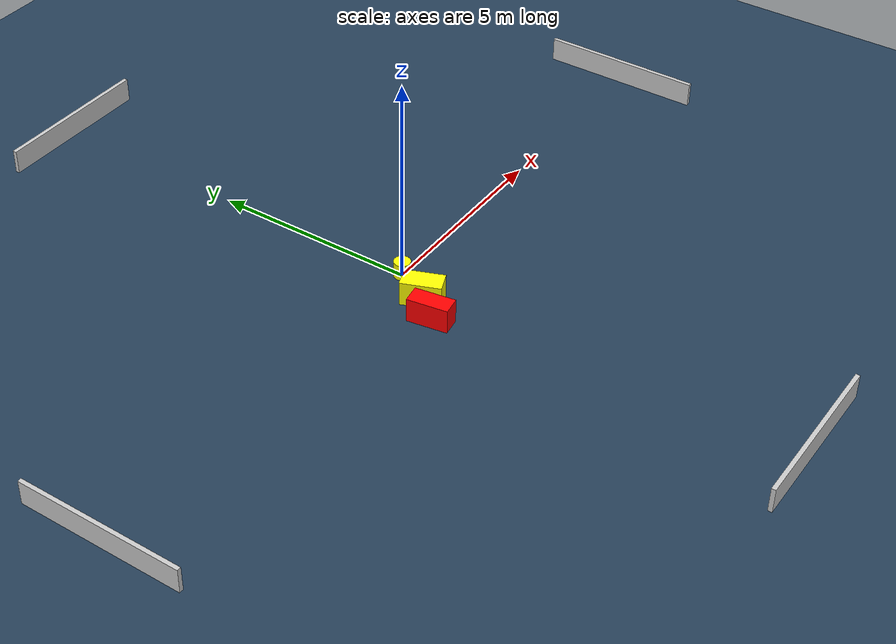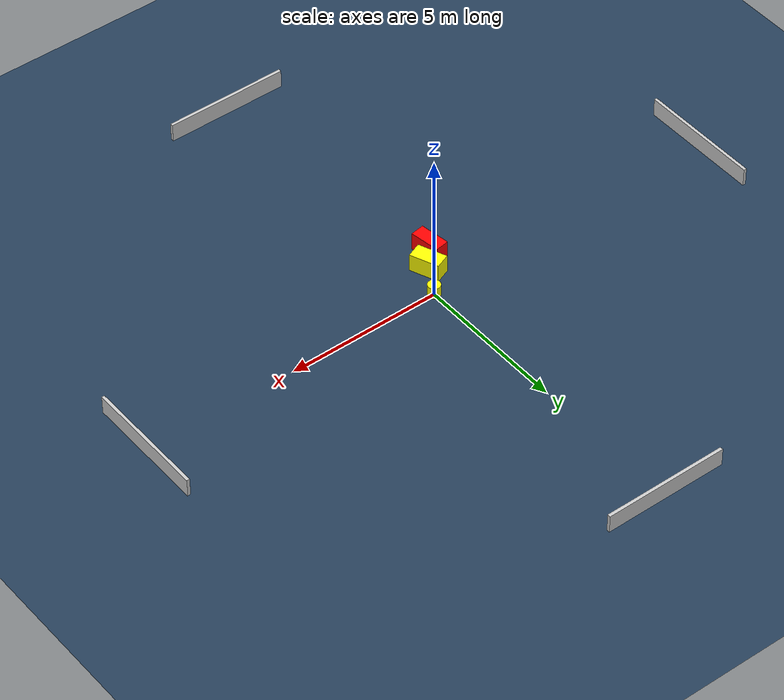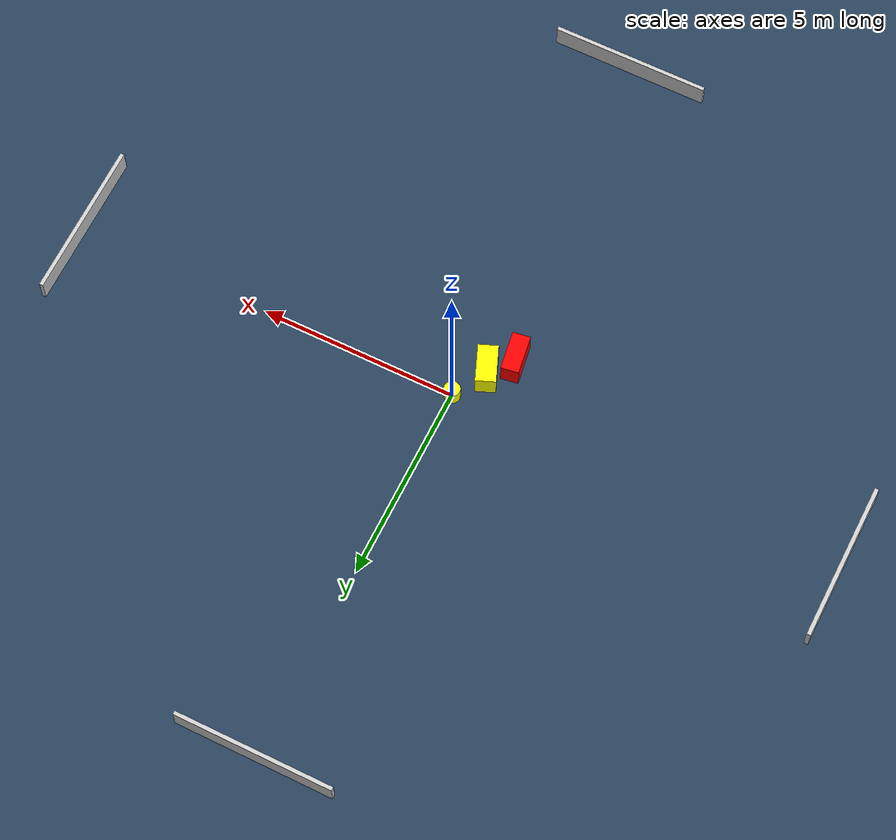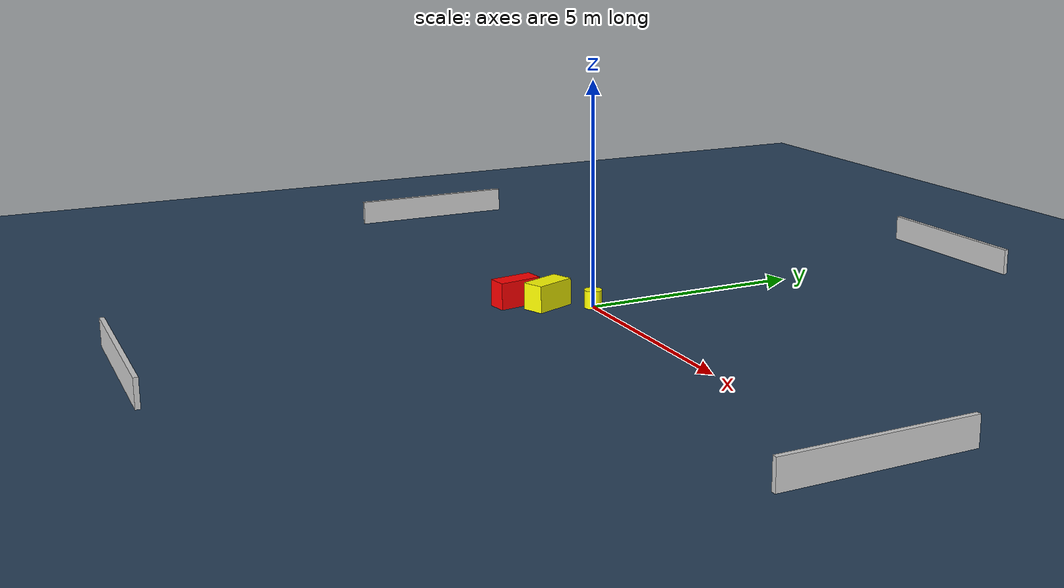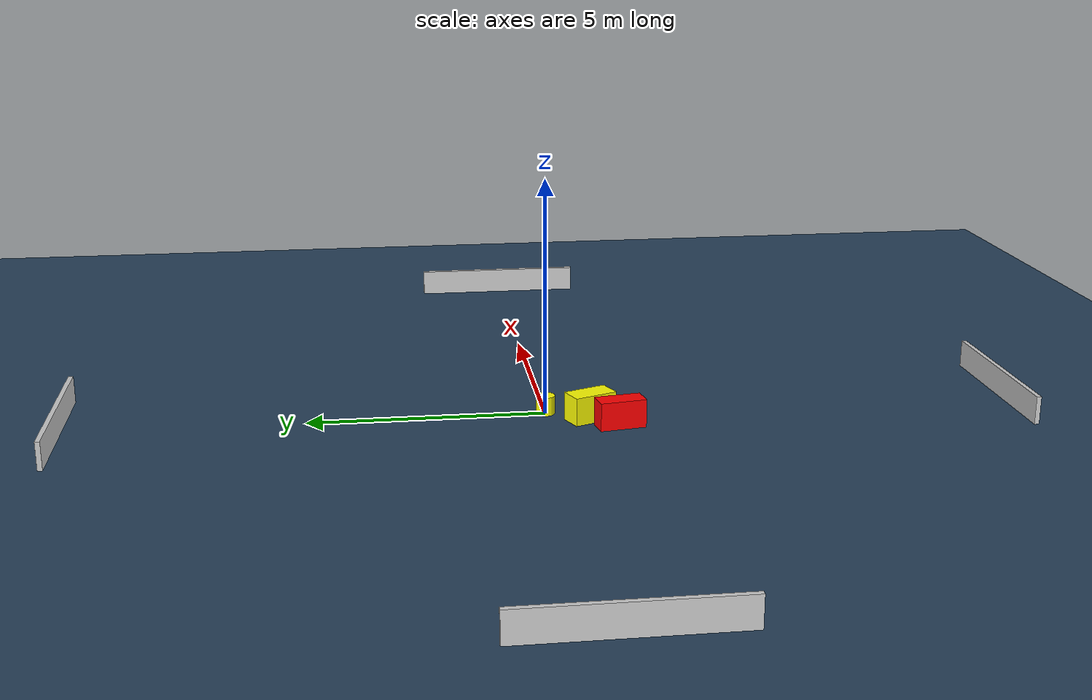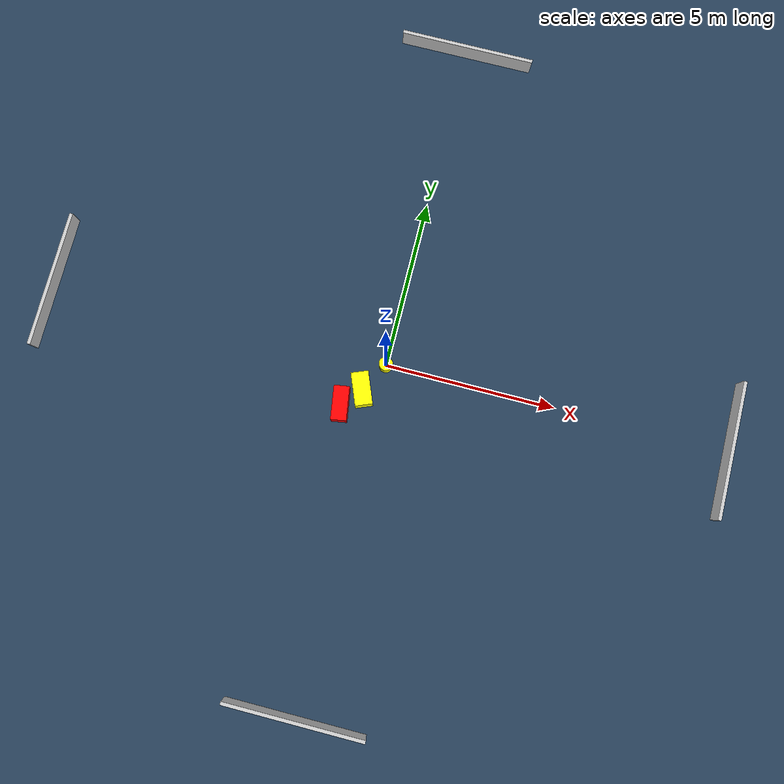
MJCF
<?xml version="1.0" ?>
<mujoco model="generated_environment">
  <option timestep="0.01" integrator="RK4" cone="elliptic"/>
  <default>
    <geom density="1"/>
  </default>
  <asset>
    <texture builtin="gradient" height="3072" name="skybox" rgb1="0.3 0.5 0.7" rgb2="0 0 0" type="skybox" width="512"/>
    <texture builtin="checker" height="300" name="groundplane" rgb1="0.2 0.3 0.4" rgb2="0.1 0.2 0.3" type="2d" width="300"/>
    <material name="groundplane" reflectance="0.2" texrepeat="5 5" texture="groundplane"/>
  </asset>
  <worldbody>
    <light dir="0 0 -1" directional="true" pos="0 0 1.5"/>
    <geom condim="3" friction="0.5 0.005 0.001" material="groundplane" name="floor" pos="0 0 0" size="0 0 0.05" type="plane"/>
    <body name="walls">
      <geom name="wall_1" condim="4" pos="-10.0 0.0 0.3" rgba="0.800000011920929 0.800000011920929 0.800000011920929 1.0" size="0.05 2.0 0.3" type="box"/>
      <geom name="wall_2" condim="4" pos="10.0 0.0 0.3" rgba="0.800000011920929 0.800000011920929 0.800000011920929 1.0" size="0.05 2.0 0.3" type="box"/>
      <geom name="wall_3" condim="4" pos="0.0 -10.0 0.3" rgba="0.800000011920929 0.800000011920929 0.800000011920929 1.0" size="2.0 0.05 0.3" type="box"/>
      <geom name="wall_4" condim="4" pos="0.0 10.0 0.3" rgba="0.800000011920929 0.800000011920929 0.800000011920929 1.0" size="2.0 0.05 0.3" type="box"/>
    </body>
    <body name="robot">
      <joint name="joint_x" type="slide" pos="0 0 0" axis="1 0 0"/>
      <joint name="joint_y" type="slide" pos="0 0 0" axis="0 1 0"/>
      <geom name="robot" type="cylinder" pos="0.0 0.0 0.2" size="0.2 0.2 0.0" mass="5.0" friction="1.0 0.005 0.0001" condim="4" rgba="1.0 1.0 0.0 1.0"/>
    </body>
    <body name="obstacle_1_movable">
      <geom name="obstacle_1_movable" condim="4" pos="-0.4809333196524872 -0.878492091598004 0.3" euler="0 0 111.92137084450314" friction="0.0 0.005 0.001" rgba="1.0 1.0 0.0 1.0" size="0.47795592912460616 0.25244497287579815 0.3" type="box" mass="0.1"/>
      <joint type="free"/>
    </body>
    <body name="obstacle_2_static">
      <geom name="obstacle_2_static" condim="4" pos="-0.9682667138479121 -1.430845440501465 0.3" euler="0 0 98.84015021404836" friction="0.0 0.005 0.001" rgba="1.0 0.0 0.0 1.0" size="0.49105466696077416 0.22444825322659945 0.3" type="box"/>
    </body>
  </worldbody>
  <actuator>
    <motor name="actuator_x" joint="joint_x" gear="1" ctrlrange="-1 1"/>
    <motor name="actuator_y" joint="joint_y" gear="1" ctrlrange="-1 1"/>
  </actuator>
</mujoco>
